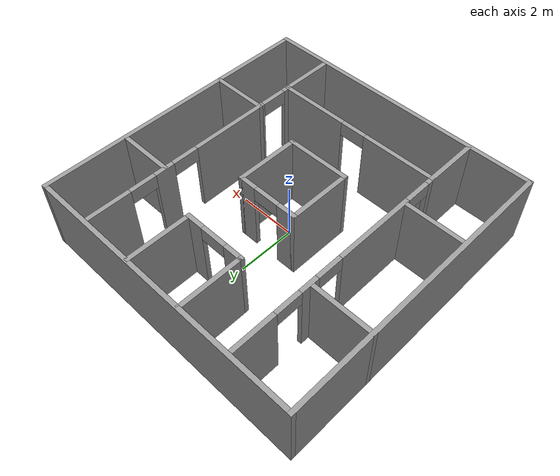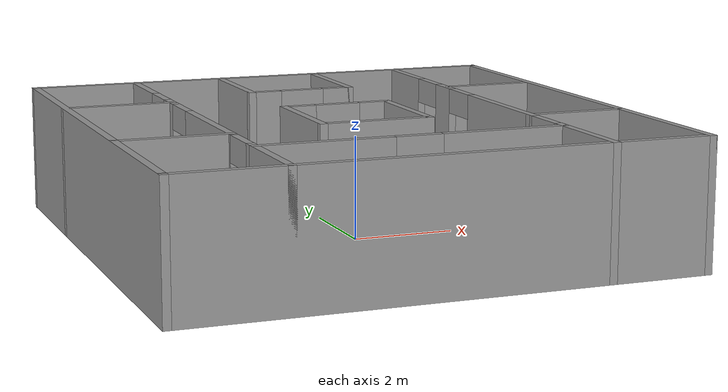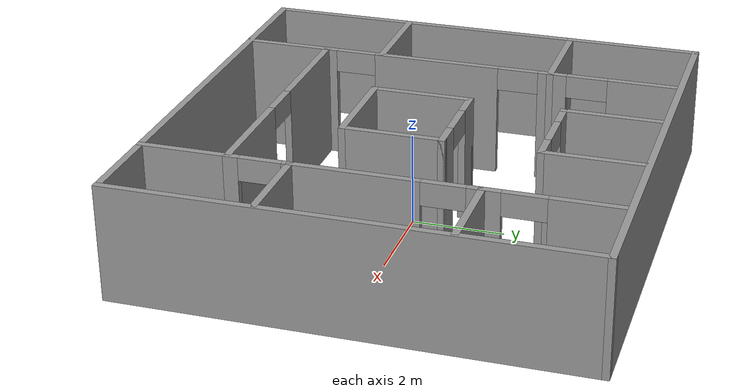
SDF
<?xml version='1.0'?>
<sdf version='1.7'>
  <model name='250522_test_1'>
    <pose>-0.125105 0.170192 0 0 -0 0</pose>
    <link name='Wall_15'>
      <pose>0.1 -3.075 0 0 -0 0</pose>
      <visual name='Wall_15_Visual_0'>
        <pose>-1.68604 0 1.25 0 -0 0</pose>
        <geometry>
          <box>
            <size>2.62791 0.15 2.5</size>
          </box>
        </geometry>
        <material>
          <script>
            <uri>file://media/materials/scripts/gazebo.material</uri>
            <name>Gazebo/Grey</name>
          </script>
          <ambient>1 1 1 1</ambient>
        </material>
        <meta>
          <layer>0</layer>
        </meta>
      </visual>
      <collision name='Wall_15_Collision_0'>
        <geometry>
          <box>
            <size>2.62791 0.15 2.5</size>
          </box>
        </geometry>
        <pose>-1.68604 0 1.25 0 -0 0</pose>
      </collision>
      <visual name='Wall_15_Visual_1'>
        <pose>1.76396 0 1.25 0 -0 0</pose>
        <geometry>
          <box>
            <size>2.47208 0.15 2.5</size>
          </box>
        </geometry>
        <material>
          <script>
            <uri>file://media/materials/scripts/gazebo.material</uri>
            <name>Gazebo/Grey</name>
          </script>
          <ambient>1 1 1 1</ambient>
        </material>
        <meta>
          <layer>0</layer>
        </meta>
      </visual>
      <collision name='Wall_15_Collision_1'>
        <geometry>
          <box>
            <size>2.47208 0.15 2.5</size>
          </box>
        </geometry>
        <pose>1.76396 0 1.25 0 -0 0</pose>
      </collision>
      <visual name='Wall_15_Visual_2'>
        <pose>0.077915 0 2.25 0 -0 0</pose>
        <geometry>
          <box>
            <size>0.9 0.15 0.5</size>
          </box>
        </geometry>
        <material>
          <script>
            <uri>file://media/materials/scripts/gazebo.material</uri>
            <name>Gazebo/Grey</name>
          </script>
          <ambient>1 1 1 1</ambient>
        </material>
        <meta>
          <layer>0</layer>
        </meta>
      </visual>
      <collision name='Wall_15_Collision_2'>
        <geometry>
          <box>
            <size>0.9 0.15 0.5</size>
          </box>
        </geometry>
        <pose>0.077915 0 2.25 0 -0 0</pose>
      </collision>
    </link>
    <link name='Wall_30'>
      <pose>0.084473 0.754603 0 0 -0 0</pose>
      <visual name='Wall_30_Visual_0'>
        <pose>-0.778801 0 1.25 0 -0 0</pose>
        <geometry>
          <box>
            <size>0.692399 0.15 2.5</size>
          </box>
        </geometry>
        <material>
          <script>
            <uri>file://media/materials/scripts/gazebo.material</uri>
            <name>Gazebo/Grey</name>
          </script>
          <ambient>1 1 1 1</ambient>
        </material>
        <meta>
          <layer>0</layer>
        </meta>
      </visual>
      <collision name='Wall_30_Collision_0'>
        <geometry>
          <box>
            <size>0.692399 0.15 2.5</size>
          </box>
        </geometry>
        <pose>-0.778801 0 1.25 0 -0 0</pose>
      </collision>
      <visual name='Wall_30_Visual_1'>
        <pose>0.796199 0 1.25 0 -0 0</pose>
        <geometry>
          <box>
            <size>0.657601 0.15 2.5</size>
          </box>
        </geometry>
        <material>
          <script>
            <uri>file://media/materials/scripts/gazebo.material</uri>
            <name>Gazebo/Grey</name>
          </script>
          <ambient>1 1 1 1</ambient>
        </material>
        <meta>
          <layer>0</layer>
        </meta>
      </visual>
      <collision name='Wall_30_Collision_1'>
        <geometry>
          <box>
            <size>0.657601 0.15 2.5</size>
          </box>
        </geometry>
        <pose>0.796199 0 1.25 0 -0 0</pose>
      </collision>
      <visual name='Wall_30_Visual_2'>
        <pose>0.017399 0 2.25 0 -0 0</pose>
        <geometry>
          <box>
            <size>0.9 0.15 0.5</size>
          </box>
        </geometry>
        <material>
          <script>
            <uri>file://media/materials/scripts/gazebo.material</uri>
            <name>Gazebo/Grey</name>
          </script>
          <ambient>1 1 1 1</ambient>
        </material>
        <meta>
          <layer>0</layer>
        </meta>
      </visual>
      <collision name='Wall_30_Collision_2'>
        <geometry>
          <box>
            <size>0.9 0.15 0.5</size>
          </box>
        </geometry>
        <pose>0.017399 0 2.25 0 -0 0</pose>
      </collision>
    </link>
    <link name='Wall_31'>
      <collision name='Wall_31_Collision'>
        <geometry>
          <box>
            <size>2.25 0.15 2.5</size>
          </box>
        </geometry>
        <pose>0 0 1.25 0 -0 0</pose>
      </collision>
      <visual name='Wall_31_Visual'>
        <pose>0 0 1.25 0 -0 0</pose>
        <geometry>
          <box>
            <size>2.25 0.15 2.5</size>
          </box>
        </geometry>
        <material>
          <script>
            <uri>file://media/materials/scripts/gazebo.material</uri>
            <name>Gazebo/Grey</name>
          </script>
          <ambient>1 1 1 1</ambient>
        </material>
        <meta>
          <layer>0</layer>
        </meta>
      </visual>
      <pose>1.13447 -0.295397 0 0 -0 -1.5708</pose>
    </link>
    <link name='Wall_32'>
      <collision name='Wall_32_Collision'>
        <geometry>
          <box>
            <size>2.25 0.15 2.5</size>
          </box>
        </geometry>
        <pose>0 0 1.25 0 -0 0</pose>
      </collision>
      <visual name='Wall_32_Visual'>
        <pose>0 0 1.25 0 -0 0</pose>
        <geometry>
          <box>
            <size>2.25 0.15 2.5</size>
          </box>
        </geometry>
        <material>
          <script>
            <uri>file://media/materials/scripts/gazebo.material</uri>
            <name>Gazebo/Grey</name>
          </script>
          <ambient>1 1 1 1</ambient>
        </material>
        <meta>
          <layer>0</layer>
        </meta>
      </visual>
      <pose>0.084473 -1.3454 0 0 -0 3.14159</pose>
    </link>
    <link name='Wall_33'>
      <collision name='Wall_33_Collision'>
        <geometry>
          <box>
            <size>2.25 0.15 2.5</size>
          </box>
        </geometry>
        <pose>0 0 1.25 0 -0 0</pose>
      </collision>
      <visual name='Wall_33_Visual'>
        <pose>0 0 1.25 0 -0 0</pose>
        <geometry>
          <box>
            <size>2.25 0.15 2.5</size>
          </box>
        </geometry>
        <material>
          <script>
            <uri>file://media/materials/scripts/gazebo.material</uri>
            <name>Gazebo/Grey</name>
          </script>
          <ambient>1 1 1 1</ambient>
        </material>
        <meta>
          <layer>0</layer>
        </meta>
      </visual>
      <pose>-0.965527 -0.295397 0 0 -0 1.5708</pose>
    </link>
    <link name='Wall_38'>
      <collision name='Wall_38_Collision'>
        <geometry>
          <box>
            <size>10 0.15 2.5</size>
          </box>
        </geometry>
        <pose>0 0 1.25 0 -0 0</pose>
      </collision>
      <visual name='Wall_38_Visual'>
        <pose>0 0 1.25 0 -0 0</pose>
        <geometry>
          <box>
            <size>10 0.15 2.5</size>
          </box>
        </geometry>
        <material>
          <script>
            <uri>file://media/materials/scripts/gazebo.material</uri>
            <name>Gazebo/Grey</name>
          </script>
          <ambient>1 1 1 1</ambient>
        </material>
        <meta>
          <layer>0</layer>
        </meta>
      </visual>
      <pose>0 -4.925 0 0 -0 0</pose>
    </link>
    <link name='Wall_39'>
      <collision name='Wall_39_Collision'>
        <geometry>
          <box>
            <size>10 0.15 2.5</size>
          </box>
        </geometry>
        <pose>0 0 1.25 0 -0 0</pose>
      </collision>
      <visual name='Wall_39_Visual'>
        <pose>0 0 1.25 0 -0 0</pose>
        <geometry>
          <box>
            <size>10 0.15 2.5</size>
          </box>
        </geometry>
        <material>
          <script>
            <uri>file://media/materials/scripts/gazebo.material</uri>
            <name>Gazebo/Grey</name>
          </script>
          <ambient>1 1 1 1</ambient>
        </material>
        <meta>
          <layer>0</layer>
        </meta>
      </visual>
      <pose>4.925 0 0 0 -0 1.5708</pose>
    </link>
    <link name='Wall_40'>
      <collision name='Wall_40_Collision'>
        <geometry>
          <box>
            <size>10 0.15 2.5</size>
          </box>
        </geometry>
        <pose>0 0 1.25 0 -0 0</pose>
      </collision>
      <visual name='Wall_40_Visual'>
        <pose>0 0 1.25 0 -0 0</pose>
        <geometry>
          <box>
            <size>10 0.15 2.5</size>
          </box>
        </geometry>
        <material>
          <script>
            <uri>file://media/materials/scripts/gazebo.material</uri>
            <name>Gazebo/Grey</name>
          </script>
          <ambient>1 1 1 1</ambient>
        </material>
        <meta>
          <layer>0</layer>
        </meta>
      </visual>
      <pose>0 4.925 0 0 -0 3.14159</pose>
    </link>
    <link name='Wall_42'>
      <collision name='Wall_42_Collision'>
        <geometry>
          <box>
            <size>10 0.15 2.5</size>
          </box>
        </geometry>
        <pose>0 0 1.25 0 -0 0</pose>
      </collision>
      <visual name='Wall_42_Visual'>
        <pose>0 0 1.25 0 -0 0</pose>
        <geometry>
          <box>
            <size>10 0.15 2.5</size>
          </box>
        </geometry>
        <material>
          <script>
            <uri>file://media/materials/scripts/gazebo.material</uri>
            <name>Gazebo/Grey</name>
          </script>
          <ambient>1 1 1 1</ambient>
        </material>
        <meta>
          <layer>0</layer>
        </meta>
      </visual>
      <pose>-4.925 0 0 0 -0 -1.5708</pose>
    </link>
    <link name='Wall_46'>
      <collision name='Wall_46_Collision'>
        <geometry>
          <box>
            <size>2.25 0.15 2.5</size>
          </box>
        </geometry>
        <pose>0 0 1.25 0 -0 0</pose>
      </collision>
      <visual name='Wall_46_Visual'>
        <pose>0 0 1.25 0 -0 0</pose>
        <geometry>
          <box>
            <size>2.25 0.15 2.5</size>
          </box>
        </geometry>
        <material>
          <script>
            <uri>file://media/materials/scripts/gazebo.material</uri>
            <name>Gazebo/Grey</name>
          </script>
          <ambient>1 1 1 1</ambient>
        </material>
        <meta>
          <layer>0</layer>
        </meta>
      </visual>
      <pose>-0.975 3.825 0 0 -0 1.5708</pose>
    </link>
    <link name='Wall_49'>
      <collision name='Wall_49_Collision'>
        <geometry>
          <box>
            <size>2.25 0.15 2.5</size>
          </box>
        </geometry>
        <pose>0 0 1.25 0 -0 0</pose>
      </collision>
      <visual name='Wall_49_Visual'>
        <pose>0 0 1.25 0 -0 0</pose>
        <geometry>
          <box>
            <size>2.25 0.15 2.5</size>
          </box>
        </geometry>
        <material>
          <script>
            <uri>file://media/materials/scripts/gazebo.material</uri>
            <name>Gazebo/Grey</name>
          </script>
          <ambient>1 1 1 1</ambient>
        </material>
        <meta>
          <layer>0</layer>
        </meta>
      </visual>
      <pose>1.125 3.825 0 0 -0 -1.5708</pose>
    </link>
    <link name='Wall_55'>
      <pose>-2.825 0.85 0 0 -0 1.5708</pose>
      <visual name='Wall_55_Visual_0'>
        <pose>-3.8352 0 1.25 0 -0 0</pose>
        <geometry>
          <box>
            <size>0.329597 0.15 2.5</size>
          </box>
        </geometry>
        <material>
          <script>
            <uri>file://media/materials/scripts/gazebo.material</uri>
            <name>Gazebo/Grey</name>
          </script>
          <ambient>1 1 1 1</ambient>
        </material>
        <meta>
          <layer>0</layer>
        </meta>
      </visual>
      <collision name='Wall_55_Collision_0'>
        <geometry>
          <box>
            <size>0.329597 0.15 2.5</size>
          </box>
        </geometry>
        <pose>-3.8352 0 1.25 0 -0 0</pose>
      </collision>
      <visual name='Wall_55_Visual_1'>
        <pose>-1.35733 0 1.25 0 -0 0</pose>
        <geometry>
          <box>
            <size>2.82614 0.15 2.5</size>
          </box>
        </geometry>
        <material>
          <script>
            <uri>file://media/materials/scripts/gazebo.material</uri>
            <name>Gazebo/Grey</name>
          </script>
          <ambient>1 1 1 1</ambient>
        </material>
        <meta>
          <layer>0</layer>
        </meta>
      </visual>
      <collision name='Wall_55_Collision_1'>
        <geometry>
          <box>
            <size>2.82614 0.15 2.5</size>
          </box>
        </geometry>
        <pose>-1.35733 0 1.25 0 -0 0</pose>
      </collision>
      <visual name='Wall_55_Visual_2'>
        <pose>1.27378 0 1.25 0 -0 0</pose>
        <geometry>
          <box>
            <size>0.636084 0.15 2.5</size>
          </box>
        </geometry>
        <material>
          <script>
            <uri>file://media/materials/scripts/gazebo.material</uri>
            <name>Gazebo/Grey</name>
          </script>
          <ambient>1 1 1 1</ambient>
        </material>
        <meta>
          <layer>0</layer>
        </meta>
      </visual>
      <collision name='Wall_55_Collision_2'>
        <geometry>
          <box>
            <size>0.636084 0.15 2.5</size>
          </box>
        </geometry>
        <pose>1.27378 0 1.25 0 -0 0</pose>
      </collision>
      <visual name='Wall_55_Visual_3'>
        <pose>3.24591 0 1.25 0 -0 0</pose>
        <geometry>
          <box>
            <size>1.50818 0.15 2.5</size>
          </box>
        </geometry>
        <material>
          <script>
            <uri>file://media/materials/scripts/gazebo.material</uri>
            <name>Gazebo/Grey</name>
          </script>
          <ambient>1 1 1 1</ambient>
        </material>
        <meta>
          <layer>0</layer>
        </meta>
      </visual>
      <collision name='Wall_55_Collision_3'>
        <geometry>
          <box>
            <size>1.50818 0.15 2.5</size>
          </box>
        </geometry>
        <pose>3.24591 0 1.25 0 -0 0</pose>
      </collision>
      <visual name='Wall_55_Visual_4'>
        <pose>-3.2204 0 2.25 0 -0 0</pose>
        <geometry>
          <box>
            <size>0.9 0.15 0.5</size>
          </box>
        </geometry>
        <material>
          <script>
            <uri>file://media/materials/scripts/gazebo.material</uri>
            <name>Gazebo/Grey</name>
          </script>
          <ambient>1 1 1 1</ambient>
        </material>
        <meta>
          <layer>0</layer>
        </meta>
      </visual>
      <collision name='Wall_55_Collision_4'>
        <geometry>
          <box>
            <size>0.9 0.15 0.5</size>
          </box>
        </geometry>
        <pose>-3.2204 0 2.25 0 -0 0</pose>
      </collision>
      <visual name='Wall_55_Visual_5'>
        <pose>0.50574 0 2.25 0 -0 0</pose>
        <geometry>
          <box>
            <size>0.9 0.15 0.5</size>
          </box>
        </geometry>
        <material>
          <script>
            <uri>file://media/materials/scripts/gazebo.material</uri>
            <name>Gazebo/Grey</name>
          </script>
          <ambient>1 1 1 1</ambient>
        </material>
        <meta>
          <layer>0</layer>
        </meta>
      </visual>
      <collision name='Wall_55_Collision_5'>
        <geometry>
          <box>
            <size>0.9 0.15 0.5</size>
          </box>
        </geometry>
        <pose>0.50574 0 2.25 0 -0 0</pose>
      </collision>
      <visual name='Wall_55_Visual_6'>
        <pose>2.04182 0 2.25 0 -0 0</pose>
        <geometry>
          <box>
            <size>0.9 0.15 0.5</size>
          </box>
        </geometry>
        <material>
          <script>
            <uri>file://media/materials/scripts/gazebo.material</uri>
            <name>Gazebo/Grey</name>
          </script>
          <ambient>1 1 1 1</ambient>
        </material>
        <meta>
          <layer>0</layer>
        </meta>
      </visual>
      <collision name='Wall_55_Collision_6'>
        <geometry>
          <box>
            <size>0.9 0.15 0.5</size>
          </box>
        </geometry>
        <pose>2.04182 0 2.25 0 -0 0</pose>
      </collision>
    </link>
    <link name='Wall_57'>
      <pose>3.025 0.85 0 0 -0 1.5708</pose>
      <visual name='Wall_57_Visual_0'>
        <pose>-3.84281 0 1.25 0 -0 0</pose>
        <geometry>
          <box>
            <size>0.314388 0.15 2.5</size>
          </box>
        </geometry>
        <material>
          <script>
            <uri>file://media/materials/scripts/gazebo.material</uri>
            <name>Gazebo/Grey</name>
          </script>
          <ambient>1 1 1 1</ambient>
        </material>
        <meta>
          <layer>0</layer>
        </meta>
      </visual>
      <collision name='Wall_57_Collision_0'>
        <geometry>
          <box>
            <size>0.314388 0.15 2.5</size>
          </box>
        </geometry>
        <pose>-3.84281 0 1.25 0 -0 0</pose>
      </collision>
      <visual name='Wall_57_Visual_1'>
        <pose>-1.38014 0 1.25 0 -0 0</pose>
        <geometry>
          <box>
            <size>2.81094 0.15 2.5</size>
          </box>
        </geometry>
        <material>
          <script>
            <uri>file://media/materials/scripts/gazebo.material</uri>
            <name>Gazebo/Grey</name>
          </script>
          <ambient>1 1 1 1</ambient>
        </material>
        <meta>
          <layer>0</layer>
        </meta>
      </visual>
      <collision name='Wall_57_Collision_1'>
        <geometry>
          <box>
            <size>2.81094 0.15 2.5</size>
          </box>
        </geometry>
        <pose>-1.38014 0 1.25 0 -0 0</pose>
      </collision>
      <visual name='Wall_57_Visual_2'>
        <pose>1.26618 0 1.25 0 -0 0</pose>
        <geometry>
          <box>
            <size>0.68171 0.15 2.5</size>
          </box>
        </geometry>
        <material>
          <script>
            <uri>file://media/materials/scripts/gazebo.material</uri>
            <name>Gazebo/Grey</name>
          </script>
          <ambient>1 1 1 1</ambient>
        </material>
        <meta>
          <layer>0</layer>
        </meta>
      </visual>
      <collision name='Wall_57_Collision_2'>
        <geometry>
          <box>
            <size>0.68171 0.15 2.5</size>
          </box>
        </geometry>
        <pose>1.26618 0 1.25 0 -0 0</pose>
      </collision>
      <visual name='Wall_57_Visual_3'>
        <pose>3.25352 0 1.25 0 -0 0</pose>
        <geometry>
          <box>
            <size>1.49297 0.15 2.5</size>
          </box>
        </geometry>
        <material>
          <script>
            <uri>file://media/materials/scripts/gazebo.material</uri>
            <name>Gazebo/Grey</name>
          </script>
          <ambient>1 1 1 1</ambient>
        </material>
        <meta>
          <layer>0</layer>
        </meta>
      </visual>
      <collision name='Wall_57_Collision_3'>
        <geometry>
          <box>
            <size>1.49297 0.15 2.5</size>
          </box>
        </geometry>
        <pose>3.25352 0 1.25 0 -0 0</pose>
      </collision>
      <visual name='Wall_57_Visual_4'>
        <pose>-3.23561 0 2.25 0 -0 0</pose>
        <geometry>
          <box>
            <size>0.9 0.15 0.5</size>
          </box>
        </geometry>
        <material>
          <script>
            <uri>file://media/materials/scripts/gazebo.material</uri>
            <name>Gazebo/Grey</name>
          </script>
          <ambient>1 1 1 1</ambient>
        </material>
        <meta>
          <layer>0</layer>
        </meta>
      </visual>
      <collision name='Wall_57_Collision_4'>
        <geometry>
          <box>
            <size>0.9 0.15 0.5</size>
          </box>
        </geometry>
        <pose>-3.23561 0 2.25 0 -0 0</pose>
      </collision>
      <visual name='Wall_57_Visual_5'>
        <pose>0.475323 0 2.25 0 -0 0</pose>
        <geometry>
          <box>
            <size>0.9 0.15 0.5</size>
          </box>
        </geometry>
        <material>
          <script>
            <uri>file://media/materials/scripts/gazebo.material</uri>
            <name>Gazebo/Grey</name>
          </script>
          <ambient>1 1 1 1</ambient>
        </material>
        <meta>
          <layer>0</layer>
        </meta>
      </visual>
      <collision name='Wall_57_Collision_5'>
        <geometry>
          <box>
            <size>0.9 0.15 0.5</size>
          </box>
        </geometry>
        <pose>0.475323 0 2.25 0 -0 0</pose>
      </collision>
      <visual name='Wall_57_Visual_6'>
        <pose>2.05703 0 2.25 0 -0 0</pose>
        <geometry>
          <box>
            <size>0.9 0.15 0.5</size>
          </box>
        </geometry>
        <material>
          <script>
            <uri>file://media/materials/scripts/gazebo.material</uri>
            <name>Gazebo/Grey</name>
          </script>
          <ambient>1 1 1 1</ambient>
        </material>
        <meta>
          <layer>0</layer>
        </meta>
      </visual>
      <collision name='Wall_57_Collision_6'>
        <geometry>
          <box>
            <size>0.9 0.15 0.5</size>
          </box>
        </geometry>
        <pose>2.05703 0 2.25 0 -0 0</pose>
      </collision>
    </link>
    <link name='Wall_59'>
      <pose>0.075 2.775 0 0 -0 0</pose>
      <visual name='Wall_59_Visual_0'>
        <pose>-0.781669 0 1.25 0 -0 0</pose>
        <geometry>
          <box>
            <size>0.686663 0.15 2.5</size>
          </box>
        </geometry>
        <material>
          <script>
            <uri>file://media/materials/scripts/gazebo.material</uri>
            <name>Gazebo/Grey</name>
          </script>
          <ambient>1 1 1 1</ambient>
        </material>
        <meta>
          <layer>0</layer>
        </meta>
      </visual>
      <collision name='Wall_59_Collision_0'>
        <geometry>
          <box>
            <size>0.686663 0.15 2.5</size>
          </box>
        </geometry>
        <pose>-0.781669 0 1.25 0 -0 0</pose>
      </collision>
      <visual name='Wall_59_Visual_1'>
        <pose>0.793331 0 1.25 0 -0 0</pose>
        <geometry>
          <box>
            <size>0.663337 0.15 2.5</size>
          </box>
        </geometry>
        <material>
          <script>
            <uri>file://media/materials/scripts/gazebo.material</uri>
            <name>Gazebo/Grey</name>
          </script>
          <ambient>1 1 1 1</ambient>
        </material>
        <meta>
          <layer>0</layer>
        </meta>
      </visual>
      <collision name='Wall_59_Collision_1'>
        <geometry>
          <box>
            <size>0.663337 0.15 2.5</size>
          </box>
        </geometry>
        <pose>0.793331 0 1.25 0 -0 0</pose>
      </collision>
      <visual name='Wall_59_Visual_2'>
        <pose>0.011663 0 2.25 0 -0 0</pose>
        <geometry>
          <box>
            <size>0.9 0.15 0.5</size>
          </box>
        </geometry>
        <material>
          <script>
            <uri>file://media/materials/scripts/gazebo.material</uri>
            <name>Gazebo/Grey</name>
          </script>
          <ambient>1 1 1 1</ambient>
        </material>
        <meta>
          <layer>0</layer>
        </meta>
      </visual>
      <collision name='Wall_59_Collision_2'>
        <geometry>
          <box>
            <size>0.9 0.15 0.5</size>
          </box>
        </geometry>
        <pose>0.011663 0 2.25 0 -0 0</pose>
      </collision>
    </link>
    <link name='Wall_62'>
      <collision name='Wall_62_Collision'>
        <geometry>
          <box>
            <size>2.25 0.15 2.5</size>
          </box>
        </geometry>
        <pose>0 0 1.25 0 -0 0</pose>
      </collision>
      <visual name='Wall_62_Visual'>
        <pose>0 0 1.25 0 -0 0</pose>
        <geometry>
          <box>
            <size>2.25 0.15 2.5</size>
          </box>
        </geometry>
        <material>
          <script>
            <uri>file://media/materials/scripts/gazebo.material</uri>
            <name>Gazebo/Grey</name>
          </script>
          <ambient>1 1 1 1</ambient>
        </material>
        <meta>
          <layer>0</layer>
        </meta>
      </visual>
      <pose>-3.875 2.075 0 0 -0 0</pose>
    </link>
    <link name='Wall_64'>
      <collision name='Wall_64_Collision'>
        <geometry>
          <box>
            <size>2.25 0.15 2.5</size>
          </box>
        </geometry>
        <pose>0 0 1.25 0 -0 0</pose>
      </collision>
      <visual name='Wall_64_Visual'>
        <pose>0 0 1.25 0 -0 0</pose>
        <geometry>
          <box>
            <size>2.25 0.15 2.5</size>
          </box>
        </geometry>
        <material>
          <script>
            <uri>file://media/materials/scripts/gazebo.material</uri>
            <name>Gazebo/Grey</name>
          </script>
          <ambient>1 1 1 1</ambient>
        </material>
        <meta>
          <layer>0</layer>
        </meta>
      </visual>
      <pose>-3.875 -1.775 0 0 -0 3.14159</pose>
    </link>
    <link name='Wall_66'>
      <collision name='Wall_66_Collision'>
        <geometry>
          <box>
            <size>2 0.15 2.5</size>
          </box>
        </geometry>
        <pose>0 0 1.25 0 -0 0</pose>
      </collision>
      <visual name='Wall_66_Visual'>
        <pose>0 0 1.25 0 -0 0</pose>
        <geometry>
          <box>
            <size>2 0.15 2.5</size>
          </box>
        </geometry>
        <material>
          <script>
            <uri>file://media/materials/scripts/gazebo.material</uri>
            <name>Gazebo/Grey</name>
          </script>
          <ambient>1 1 1 1</ambient>
        </material>
        <meta>
          <layer>0</layer>
        </meta>
      </visual>
      <pose>-2.825 -4 0 0 -0 -1.5708</pose>
    </link>
    <link name='Wall_69'>
      <collision name='Wall_69_Collision'>
        <geometry>
          <box>
            <size>1.96958 0.15 2.5</size>
          </box>
        </geometry>
        <pose>0 0 1.25 0 -0 0</pose>
      </collision>
      <visual name='Wall_69_Visual'>
        <pose>0 0 1.25 0 -0 0</pose>
        <geometry>
          <box>
            <size>1.96958 0.15 2.5</size>
          </box>
        </geometry>
        <material>
          <script>
            <uri>file://media/materials/scripts/gazebo.material</uri>
            <name>Gazebo/Grey</name>
          </script>
          <ambient>1 1 1 1</ambient>
        </material>
        <meta>
          <layer>0</layer>
        </meta>
      </visual>
      <pose>3.96521 2.075 0 0 -0 0</pose>
    </link>
    <link name='Wall_74'>
      <collision name='Wall_74_Collision'>
        <geometry>
          <box>
            <size>2 0.15 2.5</size>
          </box>
        </geometry>
        <pose>0 0 1.25 0 -0 0</pose>
      </collision>
      <visual name='Wall_74_Visual'>
        <pose>0 0 1.25 0 -0 0</pose>
        <geometry>
          <box>
            <size>2 0.15 2.5</size>
          </box>
        </geometry>
        <material>
          <script>
            <uri>file://media/materials/scripts/gazebo.material</uri>
            <name>Gazebo/Grey</name>
          </script>
          <ambient>1 1 1 1</ambient>
        </material>
        <meta>
          <layer>0</layer>
        </meta>
      </visual>
      <pose>3.95 -1.775 0 0 -0 0</pose>
    </link>
    <link name='Wall_76'>
      <collision name='Wall_76_Collision'>
        <geometry>
          <box>
            <size>2 0.15 2.5</size>
          </box>
        </geometry>
        <pose>0 0 1.25 0 -0 0</pose>
      </collision>
      <visual name='Wall_76_Visual'>
        <pose>0 0 1.25 0 -0 0</pose>
        <geometry>
          <box>
            <size>2 0.15 2.5</size>
          </box>
        </geometry>
        <material>
          <script>
            <uri>file://media/materials/scripts/gazebo.material</uri>
            <name>Gazebo/Grey</name>
          </script>
          <ambient>1 1 1 1</ambient>
        </material>
        <meta>
          <layer>0</layer>
        </meta>
      </visual>
      <pose>3.025 -4 0 0 -0 -1.5708</pose>
    </link>
    <static>1</static>
  </model>
</sdf>
